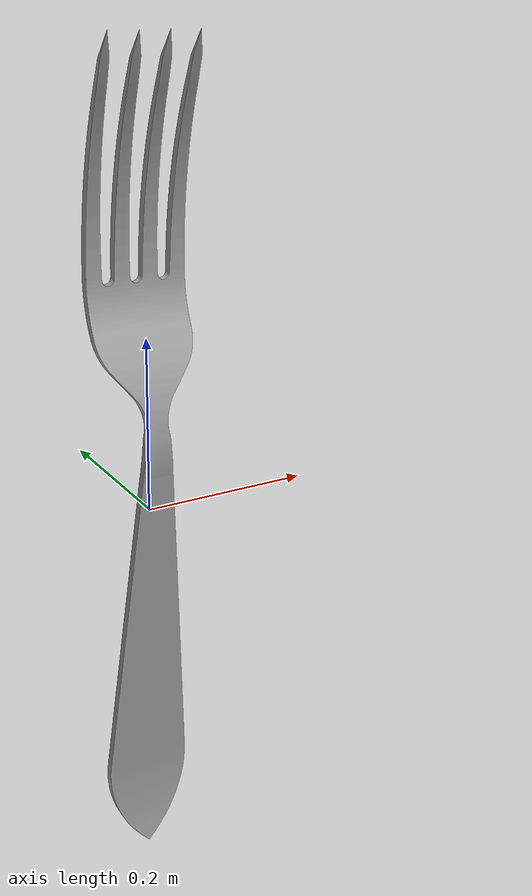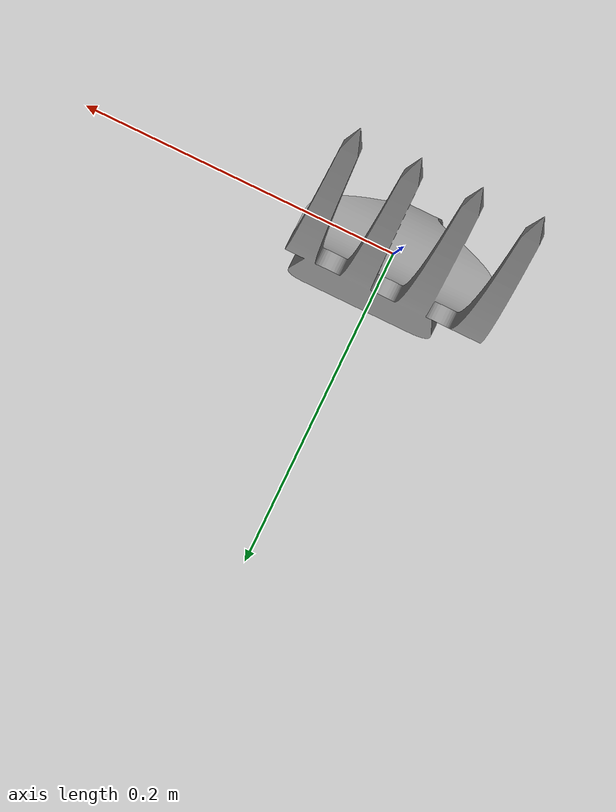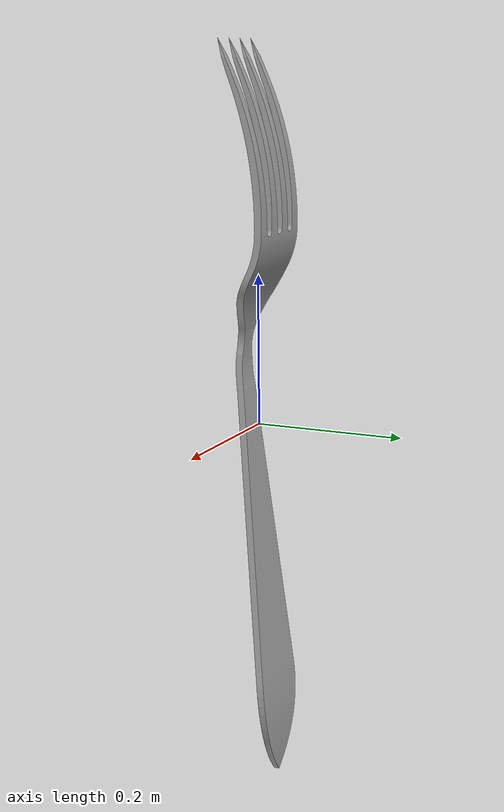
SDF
<?xml version="1.0" ?>
<sdf version="1.5">
  <model name='cutlery1'>
    <pose>0 0 0 0 0 0</pose>
    <static>1</static>
    <link name='body'>
      <collision name="cutlery1-coll">
        <pose>0 0 -0.5 0 0 0</pose>
        <geometry>
          <mesh>
            <uri>model://cutlery1/meshes/cutlery1.dae</uri>
          </mesh>
        </geometry>
      </collision>
      <visual name='cutlery1'>
        <cast_shadows>1</cast_shadows>
        <pose>0 0 -0.5 0 0 0</pose>
        <geometry>
          <mesh>
            <uri>model://cutlery1/meshes/cutlery1.dae</uri>
          </mesh>
        </geometry>
      </visual>
      <velocity_decay>
        <linear>0</linear>
        <angular>0</angular>
      </velocity_decay>
      <self_collide>0</self_collide>
      <kinematic>0</kinematic>
      <gravity>1</gravity>
    </link>
  </model>

</sdf>
